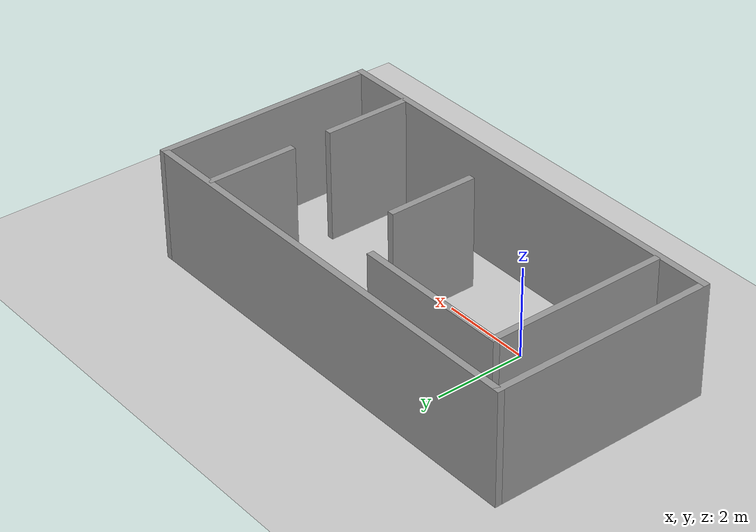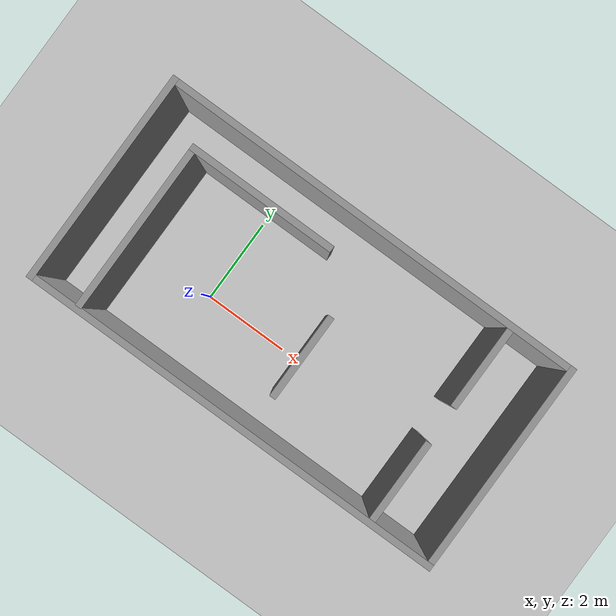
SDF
<sdf version="1.7">
 <world name="default">
  <light name="sun" type="directional">
   <pose>0 0 10 0 -0 0</pose>
   <diffuse>0.8 0.8 0.8 1</diffuse>
   <specular>0.2 0.2 0.2 1</specular>
   <attenuation>
    <range>1000</range>
    <constant>0.9</constant>
    <linear>0.01</linear>
    <quadratic>0.001</quadratic>
   </attenuation>
   <direction>-0.5 0.1 -0.9</direction>
   <spot><inner_angle>0</inner_angle><outer_angle>0</outer_angle><falloff>0</falloff></spot>
  </light>
  <model name="ground_plane">
   <static>1</static>
   <link name="link">
    <collision name="collision">
     <geometry><plane><normal>0 0 1</normal><size>100 100</size></plane></geometry>
     <surface><friction><ode><mu>100</mu><mu2>50</mu2></ode></friction></surface>
    </collision>
    <visual name="visual">
     <cast_shadows>0</cast_shadows>
     <geometry><plane><normal>0 0 1</normal><size>100 100</size></plane></geometry>
     <material>
      <script><uri>file://media/materials/scripts/gazebo.material</uri><name>Gazebo/Grey</name></script>
     </material>
    </visual>
   </link>
  </model>
  <gravity>0 0 -9.8</gravity>
  <magnetic_field>6e-06 2.3e-05 -4.2e-05</magnetic_field>
  <atmosphere type="adiabatic"/>
  <physics type="ode">
   <max_step_size>0.001</max_step_size>
   <real_time_factor>1</real_time_factor>
   <real_time_update_rate>1000</real_time_update_rate>
  </physics>
  <scene><ambient>0.4 0.4 0.4 1</ambient><background>0.7 0.7 0.7 1</background><shadows>1</shadows></scene>
  <audio><device>default</device></audio>
  <spherical_coordinates>
   <surface_model>EARTH_WGS84</surface_model>
   <latitude_deg>0</latitude_deg>
   <longitude_deg>0</longitude_deg>
   <elevation>0</elevation>
   <heading_deg>0</heading_deg>
  </spherical_coordinates>
  <model name="ash_world">
   <pose>1.995 0.735 0 0 -0 0</pose>
   <link name="Wall_1">
    <collision name="Wall_1_Collision">
     <geometry><box><size>5 0.15 2.5</size></box></geometry>
     <pose>0 0 1.25 0 -0 0</pose>
    </collision>
    <visual name="Wall_1_Visual">
     <pose>0 0 1.25 0 -0 0</pose>
     <geometry><box><size>5 0.15 2.5</size></box></geometry>
     <material>
      <script><uri>file://media/materials/scripts/gazebo.material</uri><name>Gazebo/Grey</name></script>
      <ambient>1 1 1 1</ambient>
     </material>
     <meta><layer>0</layer></meta>
    </visual>
    <pose>-4.925 0 0 0 -0 -1.5708</pose>
   </link>
   <link name="Wall_11">
    <collision name="Wall_11_Collision">
     <geometry><box><size>3.5 0.15 2.5</size></box></geometry>
     <pose>0 0 1.25 0 -0 0</pose>
    </collision>
    <visual name="Wall_11_Visual">
     <pose>0 0 1.25 0 -0 0</pose>
     <geometry><box><size>3.5 0.15 2.5</size></box></geometry>
     <material>
      <script><uri>file://media/materials/scripts/gazebo.material</uri><name>Gazebo/Grey</name></script>
      <ambient>1 1 1 1</ambient>
     </material>
     <meta><layer>0</layer></meta>
    </visual>
    <pose>-2.12168 1.54872 0 0 -0 3.14159</pose>
   </link>
   <link name="Wall_12">
    <collision name="Wall_12_Collision">
     <geometry><box><size>4 0.15 2.5</size></box></geometry>
     <pose>0 0 1.25 0 -0 0</pose>
    </collision>
    <visual name="Wall_12_Visual">
     <pose>0 0 1.25 0 -0 0</pose>
     <geometry><box><size>4 0.15 2.5</size></box></geometry>
     <material>
      <script><uri>file://media/materials/scripts/gazebo.material</uri><name>Gazebo/Grey</name></script>
      <ambient>1 1 1 1</ambient>
     </material>
     <meta><layer>0</layer></meta>
    </visual>
    <pose>-3.79668 -0.376281 0 0 -0 -1.5708</pose>
   </link>
   <link name="Wall_14">
    <collision name="Wall_14_Collision">
     <geometry><box><size>2 0.15 2.5</size></box></geometry>
     <pose>0 0 1.25 0 -0 0</pose>
    </collision>
    <visual name="Wall_14_Visual">
     <pose>0 0 1.25 0 -0 0</pose>
     <geometry><box><size>2 0.15 2.5</size></box></geometry>
     <material>
      <script><uri>file://media/materials/scripts/gazebo.material</uri><name>Gazebo/Grey</name></script>
      <ambient>1 1 1 1</ambient>
     </material>
     <meta><layer>0</layer></meta>
    </visual>
    <pose>0.41033 -0.548115 0 0 -0 -1.5708</pose>
   </link>
   <link name="Wall_2">
    <collision name="Wall_2_Collision">
     <geometry><box><size>10 0.15 2.5</size></box></geometry>
     <pose>0 0 1.25 0 -0 0</pose>
    </collision>
    <visual name="Wall_2_Visual">
     <pose>0 0 1.25 0 -0 0</pose>
     <geometry><box><size>10 0.15 2.5</size></box></geometry>
     <material>
      <script><uri>file://media/materials/scripts/gazebo.material</uri><name>Gazebo/Grey</name></script>
      <ambient>1 1 1 1</ambient>
     </material>
     <meta><layer>0</layer></meta>
    </visual>
    <pose>0 -2.425 0 0 -0 0</pose>
   </link>
   <link name="Wall_4">
    <collision name="Wall_4_Collision">
     <geometry><box><size>5 0.15 2.5</size></box></geometry>
     <pose>0 0 1.25 0 -0 0</pose>
    </collision>
    <visual name="Wall_4_Visual">
     <pose>0 0 1.25 0 -0 0</pose>
     <geometry><box><size>5 0.15 2.5</size></box></geometry>
     <material>
      <script><uri>file://media/materials/scripts/gazebo.material</uri><name>Gazebo/Grey</name></script>
      <ambient>1 1 1 1</ambient>
     </material>
     <meta><layer>0</layer></meta>
    </visual>
    <pose>4.925 0 0 0 -0 1.5708</pose>
   </link>
   <link name="Wall_5">
    <collision name="Wall_5_Collision">
     <geometry><box><size>10 0.15 2.5</size></box></geometry>
     <pose>0 0 1.25 0 -0 0</pose>
    </collision>
    <visual name="Wall_5_Visual">
     <pose>0 0 1.25 0 -0 0</pose>
     <geometry><box><size>10 0.15 2.5</size></box></geometry>
     <material>
      <script><uri>file://media/materials/scripts/gazebo.material</uri><name>Gazebo/Grey</name></script>
      <ambient>1 1 1 1</ambient>
     </material>
     <meta><layer>0</layer></meta>
    </visual>
    <pose>0 2.425 0 0 -0 3.14159</pose>
   </link>
   <link name="Wall_7">
    <collision name="Wall_7_Collision">
     <geometry><box><size>2 0.15 2.5</size></box></geometry>
     <pose>0 0 1.25 0 -0 0</pose>
    </collision>
    <visual name="Wall_7_Visual">
     <pose>0 0 1.25 0 -0 0</pose>
     <geometry><box><size>2 0.15 2.5</size></box></geometry>
     <material>
      <script><uri>file://media/materials/scripts/gazebo.material</uri><name>Gazebo/Grey</name></script>
      <ambient>1 1 1 1</ambient>
     </material>
     <meta><layer>0</layer></meta>
    </visual>
    <pose>3.4536 1.42826 0 0 -0 -1.5708</pose>
   </link>
   <link name="Wall_9">
    <collision name="Wall_9_Collision">
     <geometry><box><size>2 0.15 2.5</size></box></geometry>
     <pose>0 0 1.25 0 -0 0</pose>
    </collision>
    <visual name="Wall_9_Visual">
     <pose>0 0 1.25 0 -0 0</pose>
     <geometry><box><size>2 0.15 2.5</size></box></geometry>
     <material>
      <script><uri>file://media/materials/scripts/gazebo.material</uri><name>Gazebo/Grey</name></script>
      <ambient>1 1 1 1</ambient>
     </material>
     <meta><layer>0</layer></meta>
    </visual>
    <pose>3.47109 -1.42657 0 0 -0 1.5708</pose>
   </link>
   <static>1</static>
  </model>
 </world>
</sdf>
